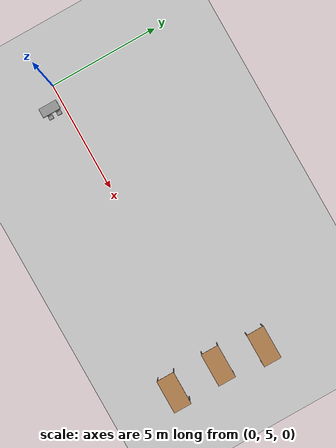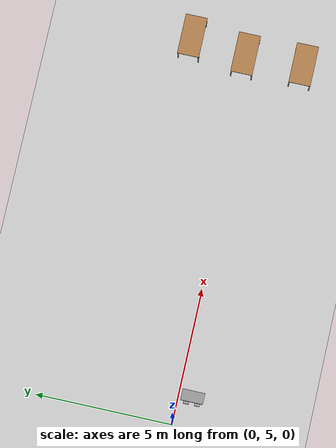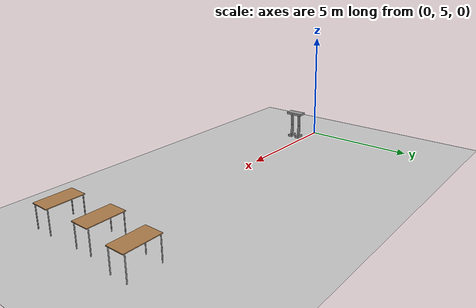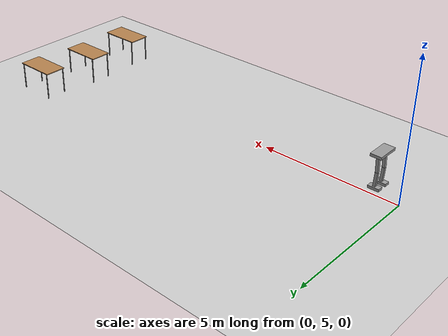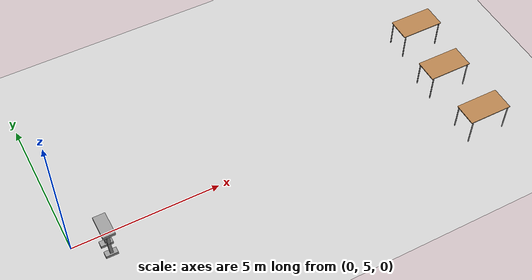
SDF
<sdf version="1.6">
 <world name="default">
  <model name="ground_plane">
   <static>1</static>
   <link name="link">
    <collision name="collision">
     <geometry><plane><normal>0 0 1</normal><size>100 100</size></plane></geometry>
     <surface>
      <contact><collide_bitmask>65535</collide_bitmask></contact>
      <friction><ode><mu>100</mu><mu2>50</mu2></ode></friction>
     </surface>
    </collision>
    <visual name="visual">
     <cast_shadows>0</cast_shadows>
     <geometry><plane><normal>0 0 1</normal><size>100 100</size></plane></geometry>
     <material>
      <script><uri>file://media/materials/scripts/gazebo.material</uri><name>Gazebo/Grey</name></script>
     </material>
    </visual>
   </link>
  </model>
  <model name="HumanoidRobot_clone_2">
   <link name="link_0">
    <inertial>
     <mass>1</mass>
     <inertia>
      <ixx>0.166667</ixx>
      <ixy>0</ixy>
      <ixz>0</ixz>
      <iyy>0.166667</iyy>
      <iyz>0</iyz>
      <izz>0.166667</izz>
     </inertia>
    </inertial>
    <pose>0 0 1.2 0 -0 0</pose>
    <visual name="visual">
     <geometry><box><size>0.4 0.8 0.1</size></box></geometry>
     <material>
      <lighting>1</lighting>
      <script><uri>file://media/materials/scripts/gazebo.material</uri><name>Gazebo/Grey</name></script>
      <shader type="vertex"><normal_map>__default__</normal_map></shader>
      <ambient>0.3 0.3 0.3 1</ambient>
      <diffuse>0.7 0.7 0.7 1</diffuse>
      <specular>0.01 0.01 0.01 1</specular>
      <emissive>0 0 0 1</emissive>
     </material>
    </visual>
    <collision name="collision">
     <geometry><box><size>0.4 0.8 0.1</size></box></geometry>
     <surface>
      <friction>
       <ode><mu>1</mu><mu2>1</mu2><fdir1>0 0 0</fdir1><slip1>0</slip1><slip2>0</slip2></ode>
       <torsional>
        <coefficient>1</coefficient>
        <patch_radius>0</patch_radius>
        <surface_radius>0</surface_radius>
        <use_patch_radius>1</use_patch_radius>
        <ode><slip>0</slip></ode>
       </torsional>
      </friction>
      <bounce><restitution_coefficient>0</restitution_coefficient><threshold>1e+06</threshold></bounce>
      <contact>
       <collide_without_contact>0</collide_without_contact>
       <collide_without_contact_bitmask>1</collide_without_contact_bitmask>
       <collide_bitmask>1</collide_bitmask>
       <ode>
        <soft_cfm>0</soft_cfm>
        <soft_erp>0.2</soft_erp>
        <kp>1e+13</kp>
        <kd>1</kd>
        <max_vel>0.01</max_vel>
        <min_depth>0</min_depth>
       </ode>
       <bullet>
        <split_impulse>1</split_impulse>
        <split_impulse_penetration_threshold>-0.01</split_impulse_penetration_threshold>
        <soft_cfm>0</soft_cfm>
        <soft_erp>0.2</soft_erp>
        <kp>1e+13</kp>
        <kd>1</kd>
       </bullet>
      </contact>
     </surface>
    </collision>
   </link>
   <link name="link_0_clone">
    <inertial>
     <mass>1</mass>
     <inertia>
      <ixx>0.166667</ixx>
      <ixy>0</ixy>
      <ixz>0</ixz>
      <iyy>0.166667</iyy>
      <iyz>0</iyz>
      <izz>0.166667</izz>
     </inertia>
    </inertial>
    <pose>0 0.2 0 0 -0 0</pose>
    <visual name="visual">
     <geometry><box><size>0.4 0.2 0.1</size></box></geometry>
     <material>
      <lighting>1</lighting>
      <script><uri>file://media/materials/scripts/gazebo.material</uri><name>Gazebo/Grey</name></script>
      <shader type="vertex"><normal_map>__default__</normal_map></shader>
      <ambient>0.3 0.3 0.3 1</ambient>
      <diffuse>0.7 0.7 0.7 1</diffuse>
      <specular>0.01 0.01 0.01 1</specular>
      <emissive>0 0 0 1</emissive>
     </material>
    </visual>
    <collision name="collision">
     <geometry><box><size>0.4 0.2 0.1</size></box></geometry>
     <surface>
      <friction>
       <ode><mu>1</mu><mu2>1</mu2><fdir1>0 0 0</fdir1><slip1>0</slip1><slip2>0</slip2></ode>
       <torsional>
        <coefficient>1</coefficient>
        <patch_radius>0</patch_radius>
        <surface_radius>0</surface_radius>
        <use_patch_radius>1</use_patch_radius>
        <ode><slip>0</slip></ode>
       </torsional>
      </friction>
      <bounce><restitution_coefficient>0</restitution_coefficient><threshold>1e+06</threshold></bounce>
      <contact>
       <collide_without_contact>0</collide_without_contact>
       <collide_without_contact_bitmask>1</collide_without_contact_bitmask>
       <collide_bitmask>1</collide_bitmask>
       <ode>
        <soft_cfm>0</soft_cfm>
        <soft_erp>0.2</soft_erp>
        <kp>1e+13</kp>
        <kd>1</kd>
        <max_vel>0.01</max_vel>
        <min_depth>0</min_depth>
       </ode>
       <bullet>
        <split_impulse>1</split_impulse>
        <split_impulse_penetration_threshold>-0.01</split_impulse_penetration_threshold>
        <soft_cfm>0</soft_cfm>
        <soft_erp>0.2</soft_erp>
        <kp>1e+13</kp>
        <kd>1</kd>
       </bullet>
      </contact>
     </surface>
    </collision>
   </link>
   <link name="link_0_clone_clone">
    <inertial>
     <mass>1</mass>
     <inertia>
      <ixx>0.166667</ixx>
      <ixy>0</ixy>
      <ixz>0</ixz>
      <iyy>0.166667</iyy>
      <iyz>0</iyz>
      <izz>0.166667</izz>
     </inertia>
    </inertial>
    <pose>0 -0.2 0 0 -0 0</pose>
    <visual name="visual">
     <geometry><box><size>0.4 0.2 0.1</size></box></geometry>
     <material>
      <lighting>1</lighting>
      <script><uri>file://media/materials/scripts/gazebo.material</uri><name>Gazebo/Grey</name></script>
      <shader type="vertex"><normal_map>__default__</normal_map></shader>
      <ambient>0.3 0.3 0.3 1</ambient>
      <diffuse>0.7 0.7 0.7 1</diffuse>
      <specular>0.01 0.01 0.01 1</specular>
      <emissive>0 0 0 1</emissive>
     </material>
    </visual>
    <collision name="collision">
     <geometry><box><size>0.4 0.2 0.1</size></box></geometry>
     <surface>
      <friction>
       <ode><mu>1</mu><mu2>1</mu2><fdir1>0 0 0</fdir1><slip1>0</slip1><slip2>0</slip2></ode>
       <torsional>
        <coefficient>1</coefficient>
        <patch_radius>0</patch_radius>
        <surface_radius>0</surface_radius>
        <use_patch_radius>1</use_patch_radius>
        <ode><slip>0</slip></ode>
       </torsional>
      </friction>
      <bounce><restitution_coefficient>0</restitution_coefficient><threshold>1e+06</threshold></bounce>
      <contact>
       <collide_without_contact>0</collide_without_contact>
       <collide_without_contact_bitmask>1</collide_without_contact_bitmask>
       <collide_bitmask>1</collide_bitmask>
       <ode>
        <soft_cfm>0</soft_cfm>
        <soft_erp>0.2</soft_erp>
        <kp>1e+13</kp>
        <kd>1</kd>
        <max_vel>0.01</max_vel>
        <min_depth>0</min_depth>
       </ode>
       <bullet>
        <split_impulse>1</split_impulse>
        <split_impulse_penetration_threshold>-0.01</split_impulse_penetration_threshold>
        <soft_cfm>0</soft_cfm>
        <soft_erp>0.2</soft_erp>
        <kp>1e+13</kp>
        <kd>1</kd>
       </bullet>
      </contact>
     </surface>
    </collision>
   </link>
   <link name="link_1">
    <inertial>
     <mass>1</mass>
     <inertia>
      <ixx>0.166667</ixx>
      <ixy>0</ixy>
      <ixz>0</ixz>
      <iyy>0.166667</iyy>
      <iyz>0</iyz>
      <izz>0.166667</izz>
     </inertia>
    </inertial>
    <pose>0 0.2 0.86 0 0.05 0</pose>
    <visual name="visual">
     <geometry><box><size>0.1 0.1 0.6</size></box></geometry>
     <material>
      <lighting>1</lighting>
      <script><uri>file://media/materials/scripts/gazebo.material</uri><name>Gazebo/Grey</name></script>
      <shader type="vertex"><normal_map>__default__</normal_map></shader>
      <ambient>0.3 0.3 0.3 1</ambient>
      <diffuse>0.7 0.7 0.7 1</diffuse>
      <specular>0.01 0.01 0.01 1</specular>
      <emissive>0 0 0 1</emissive>
     </material>
    </visual>
    <collision name="collision">
     <geometry><box><size>0.1 0.1 0.6</size></box></geometry>
     <surface>
      <friction>
       <ode><mu>1</mu><mu2>1</mu2><fdir1>0 0 0</fdir1><slip1>0</slip1><slip2>0</slip2></ode>
       <torsional>
        <coefficient>1</coefficient>
        <patch_radius>0</patch_radius>
        <surface_radius>0</surface_radius>
        <use_patch_radius>1</use_patch_radius>
        <ode><slip>0</slip></ode>
       </torsional>
      </friction>
      <bounce><restitution_coefficient>0</restitution_coefficient><threshold>1e+06</threshold></bounce>
      <contact>
       <collide_without_contact>0</collide_without_contact>
       <collide_without_contact_bitmask>1</collide_without_contact_bitmask>
       <collide_bitmask>1</collide_bitmask>
       <ode>
        <soft_cfm>0</soft_cfm>
        <soft_erp>0.2</soft_erp>
        <kp>1e+13</kp>
        <kd>1</kd>
        <max_vel>0.01</max_vel>
        <min_depth>0</min_depth>
       </ode>
       <bullet>
        <split_impulse>1</split_impulse>
        <split_impulse_penetration_threshold>-0.01</split_impulse_penetration_threshold>
        <soft_cfm>0</soft_cfm>
        <soft_erp>0.2</soft_erp>
        <kp>1e+13</kp>
        <kd>1</kd>
       </bullet>
      </contact>
     </surface>
    </collision>
   </link>
   <link name="link_1_clone">
    <inertial>
     <mass>1</mass>
     <inertia>
      <ixx>0.166667</ixx>
      <ixy>0</ixy>
      <ixz>0</ixz>
      <iyy>0.166667</iyy>
      <iyz>0</iyz>
      <izz>0.166667</izz>
     </inertia>
    </inertial>
    <pose>0 -0.2 0.86 0 0.05 0</pose>
    <visual name="visual">
     <geometry><box><size>0.1 0.1 0.6</size></box></geometry>
     <material>
      <lighting>1</lighting>
      <script><uri>file://media/materials/scripts/gazebo.material</uri><name>Gazebo/Grey</name></script>
      <shader type="vertex"><normal_map>__default__</normal_map></shader>
      <ambient>0.3 0.3 0.3 1</ambient>
      <diffuse>0.7 0.7 0.7 1</diffuse>
      <specular>0.01 0.01 0.01 1</specular>
      <emissive>0 0 0 1</emissive>
     </material>
    </visual>
    <collision name="collision">
     <geometry><box><size>0.1 0.1 0.6</size></box></geometry>
     <surface>
      <friction>
       <ode><mu>1</mu><mu2>1</mu2><fdir1>0 0 0</fdir1><slip1>0</slip1><slip2>0</slip2></ode>
       <torsional>
        <coefficient>1</coefficient>
        <patch_radius>0</patch_radius>
        <surface_radius>0</surface_radius>
        <use_patch_radius>1</use_patch_radius>
        <ode><slip>0</slip></ode>
       </torsional>
      </friction>
      <bounce><restitution_coefficient>0</restitution_coefficient><threshold>1e+06</threshold></bounce>
      <contact>
       <collide_without_contact>0</collide_without_contact>
       <collide_without_contact_bitmask>1</collide_without_contact_bitmask>
       <collide_bitmask>1</collide_bitmask>
       <ode>
        <soft_cfm>0</soft_cfm>
        <soft_erp>0.2</soft_erp>
        <kp>1e+13</kp>
        <kd>1</kd>
        <max_vel>0.01</max_vel>
        <min_depth>0</min_depth>
       </ode>
       <bullet>
        <split_impulse>1</split_impulse>
        <split_impulse_penetration_threshold>-0.01</split_impulse_penetration_threshold>
        <soft_cfm>0</soft_cfm>
        <soft_erp>0.2</soft_erp>
        <kp>1e+13</kp>
        <kd>1</kd>
       </bullet>
      </contact>
     </surface>
    </collision>
   </link>
   <link name="link_1_clone_0">
    <inertial>
     <mass>1</mass>
     <inertia>
      <ixx>0.166667</ixx>
      <ixy>0</ixy>
      <ixz>0</ixz>
      <iyy>0.166667</iyy>
      <iyz>0</iyz>
      <izz>0.166667</izz>
     </inertia>
    </inertial>
    <pose>0 0.2 0.27 0 -0.05 0</pose>
    <visual name="visual">
     <geometry><box><size>0.1 0.1 0.6</size></box></geometry>
     <material>
      <lighting>1</lighting>
      <script><uri>file://media/materials/scripts/gazebo.material</uri><name>Gazebo/Grey</name></script>
      <shader type="vertex"><normal_map>__default__</normal_map></shader>
      <ambient>0.3 0.3 0.3 1</ambient>
      <diffuse>0.7 0.7 0.7 1</diffuse>
      <specular>0.01 0.01 0.01 1</specular>
      <emissive>0 0 0 1</emissive>
     </material>
    </visual>
    <collision name="collision">
     <geometry><box><size>0.1 0.1 0.6</size></box></geometry>
     <surface>
      <friction>
       <ode><mu>1</mu><mu2>1</mu2><fdir1>0 0 0</fdir1><slip1>0</slip1><slip2>0</slip2></ode>
       <torsional>
        <coefficient>1</coefficient>
        <patch_radius>0</patch_radius>
        <surface_radius>0</surface_radius>
        <use_patch_radius>1</use_patch_radius>
        <ode><slip>0</slip></ode>
       </torsional>
      </friction>
      <bounce><restitution_coefficient>0</restitution_coefficient><threshold>1e+06</threshold></bounce>
      <contact>
       <collide_without_contact>0</collide_without_contact>
       <collide_without_contact_bitmask>1</collide_without_contact_bitmask>
       <collide_bitmask>1</collide_bitmask>
       <ode>
        <soft_cfm>0</soft_cfm>
        <soft_erp>0.2</soft_erp>
        <kp>1e+13</kp>
        <kd>1</kd>
        <max_vel>0.01</max_vel>
        <min_depth>0</min_depth>
       </ode>
       <bullet>
        <split_impulse>1</split_impulse>
        <split_impulse_penetration_threshold>-0.01</split_impulse_penetration_threshold>
        <soft_cfm>0</soft_cfm>
        <soft_erp>0.2</soft_erp>
        <kp>1e+13</kp>
        <kd>1</kd>
       </bullet>
      </contact>
     </surface>
    </collision>
   </link>
   <link name="link_1_clone_0_clone">
    <inertial>
     <mass>1</mass>
     <inertia>
      <ixx>0.166667</ixx>
      <ixy>0</ixy>
      <ixz>0</ixz>
      <iyy>0.166667</iyy>
      <iyz>0</iyz>
      <izz>0.166667</izz>
     </inertia>
    </inertial>
    <pose>0 -0.2 0.27 0 -0.05 0</pose>
    <visual name="visual">
     <geometry><box><size>0.1 0.1 0.6</size></box></geometry>
     <material>
      <lighting>1</lighting>
      <script><uri>file://media/materials/scripts/gazebo.material</uri><name>Gazebo/Grey</name></script>
      <shader type="vertex"><normal_map>__default__</normal_map></shader>
      <ambient>0.3 0.3 0.3 1</ambient>
      <diffuse>0.7 0.7 0.7 1</diffuse>
      <specular>0.01 0.01 0.01 1</specular>
      <emissive>0 0 0 1</emissive>
     </material>
    </visual>
    <collision name="collision">
     <geometry><box><size>0.1 0.1 0.6</size></box></geometry>
     <surface>
      <friction>
       <ode><mu>1</mu><mu2>1</mu2><fdir1>0 0 0</fdir1><slip1>0</slip1><slip2>0</slip2></ode>
       <torsional>
        <coefficient>1</coefficient>
        <patch_radius>0</patch_radius>
        <surface_radius>0</surface_radius>
        <use_patch_radius>1</use_patch_radius>
        <ode><slip>0</slip></ode>
       </torsional>
      </friction>
      <bounce><restitution_coefficient>0</restitution_coefficient><threshold>1e+06</threshold></bounce>
      <contact>
       <collide_without_contact>0</collide_without_contact>
       <collide_without_contact_bitmask>1</collide_without_contact_bitmask>
       <collide_bitmask>1</collide_bitmask>
       <ode>
        <soft_cfm>0</soft_cfm>
        <soft_erp>0.2</soft_erp>
        <kp>1e+13</kp>
        <kd>1</kd>
        <max_vel>0.01</max_vel>
        <min_depth>0</min_depth>
       </ode>
       <bullet>
        <split_impulse>1</split_impulse>
        <split_impulse_penetration_threshold>-0.01</split_impulse_penetration_threshold>
        <soft_cfm>0</soft_cfm>
        <soft_erp>0.2</soft_erp>
        <kp>1e+13</kp>
        <kd>1</kd>
       </bullet>
      </contact>
     </surface>
    </collision>
   </link>
   <joint name="link_0_JOINT_0" type="fixed">
    <parent>link_0</parent>
    <child>link_1_clone</child>
    <physics>
     <ode><limit><cfm>0</cfm><erp>0.2</erp></limit><suspension><cfm>0</cfm><erp>0.2</erp></suspension></ode>
    </physics>
   </joint>
   <joint name="link_0_JOINT_1" type="fixed">
    <parent>link_0</parent>
    <child>link_1</child>
    <physics>
     <ode><limit><cfm>0</cfm><erp>0.2</erp></limit><suspension><cfm>0</cfm><erp>0.2</erp></suspension></ode>
    </physics>
   </joint>
   <joint name="link_1_JOINT_3" type="fixed">
    <parent>link_1</parent>
    <child>link_1_clone_0</child>
    <physics>
     <ode><limit><cfm>0</cfm><erp>0.2</erp></limit><suspension><cfm>0</cfm><erp>0.2</erp></suspension></ode>
    </physics>
   </joint>
   <joint name="link_1_clone_0_JOINT_5" type="fixed">
    <parent>link_1_clone_0</parent>
    <child>link_0_clone</child>
    <physics>
     <ode><limit><cfm>0</cfm><erp>0.2</erp></limit><suspension><cfm>0</cfm><erp>0.2</erp></suspension></ode>
    </physics>
   </joint>
   <joint name="link_1_clone_0_clone_JOINT_4" type="fixed">
    <parent>link_1_clone_0_clone</parent>
    <child>link_0_clone_clone</child>
    <physics>
     <ode><limit><cfm>0</cfm><erp>0.2</erp></limit><suspension><cfm>0</cfm><erp>0.2</erp></suspension></ode>
    </physics>
   </joint>
   <joint name="link_1_clone_JOINT_2" type="fixed">
    <parent>link_1_clone</parent>
    <child>link_1_clone_0_clone</child>
    <physics>
     <ode><limit><cfm>0</cfm><erp>0.2</erp></limit><suspension><cfm>0</cfm><erp>0.2</erp></suspension></ode>
    </physics>
   </joint>
   <static>0</static>
   <pose>1.02822 4.48174 0.049992 -1e-06 -2e-06 -5e-05</pose>
  </model>
  <model name="table_clone_1">
   <static>1</static>
   <link name="link">
    <collision name="surface">
     <pose>0 0 1 0 -0 0</pose>
     <geometry><box><size>1.5 0.8 0.03</size></box></geometry>
     <surface><friction><ode><mu>0.6</mu><mu2>0.6</mu2></ode></friction></surface>
    </collision>
    <visual name="visual1">
     <pose>0 0 1 0 -0 0</pose>
     <geometry><box><size>1.5 0.8 0.03</size></box></geometry>
     <material>
      <script><uri>file://media/materials/scripts/gazebo.material</uri><name>Gazebo/Wood</name></script>
     </material>
    </visual>
    <collision name="front_left_leg">
     <pose>0.68 0.38 0.5 0 -0 0</pose>
     <geometry><cylinder><radius>0.02</radius><length>1</length></cylinder></geometry>
    </collision>
    <visual name="front_left_leg">
     <pose>0.68 0.38 0.5 0 -0 0</pose>
     <geometry><cylinder><radius>0.02</radius><length>1</length></cylinder></geometry>
     <material>
      <script><uri>file://media/materials/scripts/gazebo.material</uri><name>Gazebo/Grey</name></script>
     </material>
    </visual>
    <collision name="front_right_leg">
     <pose>0.68 -0.38 0.5 0 -0 0</pose>
     <geometry><cylinder><radius>0.02</radius><length>1</length></cylinder></geometry>
    </collision>
    <visual name="front_right_leg">
     <pose>0.68 -0.38 0.5 0 -0 0</pose>
     <geometry><cylinder><radius>0.02</radius><length>1</length></cylinder></geometry>
     <material>
      <script><uri>file://media/materials/scripts/gazebo.material</uri><name>Gazebo/Grey</name></script>
     </material>
    </visual>
    <collision name="back_right_leg">
     <pose>-0.68 -0.38 0.5 0 -0 0</pose>
     <geometry><cylinder><radius>0.02</radius><length>1</length></cylinder></geometry>
    </collision>
    <visual name="back_right_leg">
     <pose>-0.68 -0.38 0.5 0 -0 0</pose>
     <geometry><cylinder><radius>0.02</radius><length>1</length></cylinder></geometry>
     <material>
      <script><uri>file://media/materials/scripts/gazebo.material</uri><name>Gazebo/Grey</name></script>
     </material>
    </visual>
    <collision name="back_left_leg">
     <pose>-0.68 0.38 0.5 0 -0 0</pose>
     <geometry><cylinder><radius>0.02</radius><length>1</length></cylinder></geometry>
    </collision>
    <visual name="back_left_leg">
     <pose>-0.68 0.38 0.5 0 -0 0</pose>
     <geometry><cylinder><radius>0.02</radius><length>1</length></cylinder></geometry>
     <material>
      <script><uri>file://media/materials/scripts/gazebo.material</uri><name>Gazebo/Grey</name></script>
     </material>
    </visual>
   </link>
   <pose>13.8703 7.3372 0 0 -0 0</pose>
  </model>
  <model name="table_clone_2">
   <static>1</static>
   <link name="link">
    <collision name="surface">
     <pose>0 0 1 0 -0 0</pose>
     <geometry><box><size>1.5 0.8 0.03</size></box></geometry>
     <surface><friction><ode><mu>0.6</mu><mu2>0.6</mu2></ode></friction></surface>
    </collision>
    <visual name="visual1">
     <pose>0 0 1 0 -0 0</pose>
     <geometry><box><size>1.5 0.8 0.03</size></box></geometry>
     <material>
      <script><uri>file://media/materials/scripts/gazebo.material</uri><name>Gazebo/Wood</name></script>
     </material>
    </visual>
    <collision name="front_left_leg">
     <pose>0.68 0.38 0.5 0 -0 0</pose>
     <geometry><cylinder><radius>0.02</radius><length>1</length></cylinder></geometry>
    </collision>
    <visual name="front_left_leg">
     <pose>0.68 0.38 0.5 0 -0 0</pose>
     <geometry><cylinder><radius>0.02</radius><length>1</length></cylinder></geometry>
     <material>
      <script><uri>file://media/materials/scripts/gazebo.material</uri><name>Gazebo/Grey</name></script>
     </material>
    </visual>
    <collision name="front_right_leg">
     <pose>0.68 -0.38 0.5 0 -0 0</pose>
     <geometry><cylinder><radius>0.02</radius><length>1</length></cylinder></geometry>
    </collision>
    <visual name="front_right_leg">
     <pose>0.68 -0.38 0.5 0 -0 0</pose>
     <geometry><cylinder><radius>0.02</radius><length>1</length></cylinder></geometry>
     <material>
      <script><uri>file://media/materials/scripts/gazebo.material</uri><name>Gazebo/Grey</name></script>
     </material>
    </visual>
    <collision name="back_right_leg">
     <pose>-0.68 -0.38 0.5 0 -0 0</pose>
     <geometry><cylinder><radius>0.02</radius><length>1</length></cylinder></geometry>
    </collision>
    <visual name="back_right_leg">
     <pose>-0.68 -0.38 0.5 0 -0 0</pose>
     <geometry><cylinder><radius>0.02</radius><length>1</length></cylinder></geometry>
     <material>
      <script><uri>file://media/materials/scripts/gazebo.material</uri><name>Gazebo/Grey</name></script>
     </material>
    </visual>
    <collision name="back_left_leg">
     <pose>-0.68 0.38 0.5 0 -0 0</pose>
     <geometry><cylinder><radius>0.02</radius><length>1</length></cylinder></geometry>
    </collision>
    <visual name="back_left_leg">
     <pose>-0.68 0.38 0.5 0 -0 0</pose>
     <geometry><cylinder><radius>0.02</radius><length>1</length></cylinder></geometry>
     <material>
      <script><uri>file://media/materials/scripts/gazebo.material</uri><name>Gazebo/Grey</name></script>
     </material>
    </visual>
   </link>
   <pose>13.6371 5.30548 0 0 -0 0</pose>
  </model>
  <model name="table_clone_3">
   <static>1</static>
   <link name="link">
    <collision name="surface">
     <pose>0 0 1 0 -0 0</pose>
     <geometry><box><size>1.5 0.8 0.03</size></box></geometry>
     <surface><friction><ode><mu>0.6</mu><mu2>0.6</mu2></ode></friction></surface>
    </collision>
    <visual name="visual1">
     <pose>0 0 1 0 -0 0</pose>
     <geometry><box><size>1.5 0.8 0.03</size></box></geometry>
     <material>
      <script><uri>file://media/materials/scripts/gazebo.material</uri><name>Gazebo/Wood</name></script>
     </material>
    </visual>
    <collision name="front_left_leg">
     <pose>0.68 0.38 0.5 0 -0 0</pose>
     <geometry><cylinder><radius>0.02</radius><length>1</length></cylinder></geometry>
    </collision>
    <visual name="front_left_leg">
     <pose>0.68 0.38 0.5 0 -0 0</pose>
     <geometry><cylinder><radius>0.02</radius><length>1</length></cylinder></geometry>
     <material>
      <script><uri>file://media/materials/scripts/gazebo.material</uri><name>Gazebo/Grey</name></script>
     </material>
    </visual>
    <collision name="front_right_leg">
     <pose>0.68 -0.38 0.5 0 -0 0</pose>
     <geometry><cylinder><radius>0.02</radius><length>1</length></cylinder></geometry>
    </collision>
    <visual name="front_right_leg">
     <pose>0.68 -0.38 0.5 0 -0 0</pose>
     <geometry><cylinder><radius>0.02</radius><length>1</length></cylinder></geometry>
     <material>
      <script><uri>file://media/materials/scripts/gazebo.material</uri><name>Gazebo/Grey</name></script>
     </material>
    </visual>
    <collision name="back_right_leg">
     <pose>-0.68 -0.38 0.5 0 -0 0</pose>
     <geometry><cylinder><radius>0.02</radius><length>1</length></cylinder></geometry>
    </collision>
    <visual name="back_right_leg">
     <pose>-0.68 -0.38 0.5 0 -0 0</pose>
     <geometry><cylinder><radius>0.02</radius><length>1</length></cylinder></geometry>
     <material>
      <script><uri>file://media/materials/scripts/gazebo.material</uri><name>Gazebo/Grey</name></script>
     </material>
    </visual>
    <collision name="back_left_leg">
     <pose>-0.68 0.38 0.5 0 -0 0</pose>
     <geometry><cylinder><radius>0.02</radius><length>1</length></cylinder></geometry>
    </collision>
    <visual name="back_left_leg">
     <pose>-0.68 0.38 0.5 0 -0 0</pose>
     <geometry><cylinder><radius>0.02</radius><length>1</length></cylinder></geometry>
     <material>
      <script><uri>file://media/materials/scripts/gazebo.material</uri><name>Gazebo/Grey</name></script>
     </material>
    </visual>
   </link>
   <pose>13.7009 3.16468 0 0 -0 0</pose>
  </model>
 </world>
</sdf>
